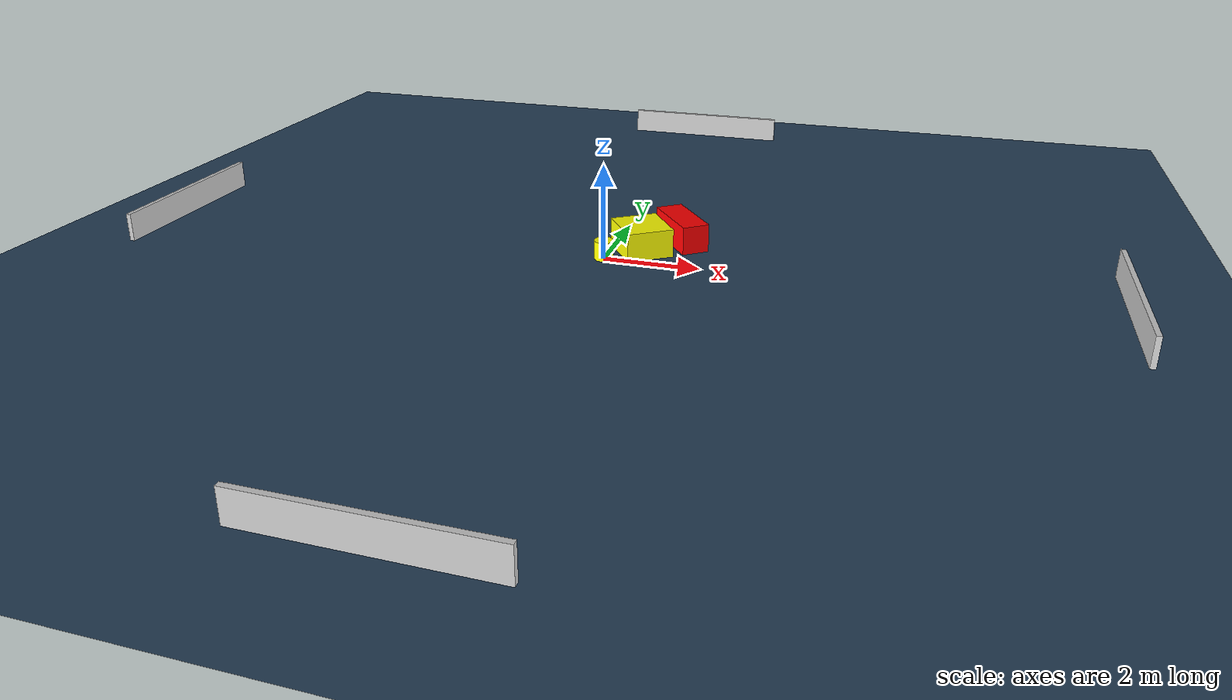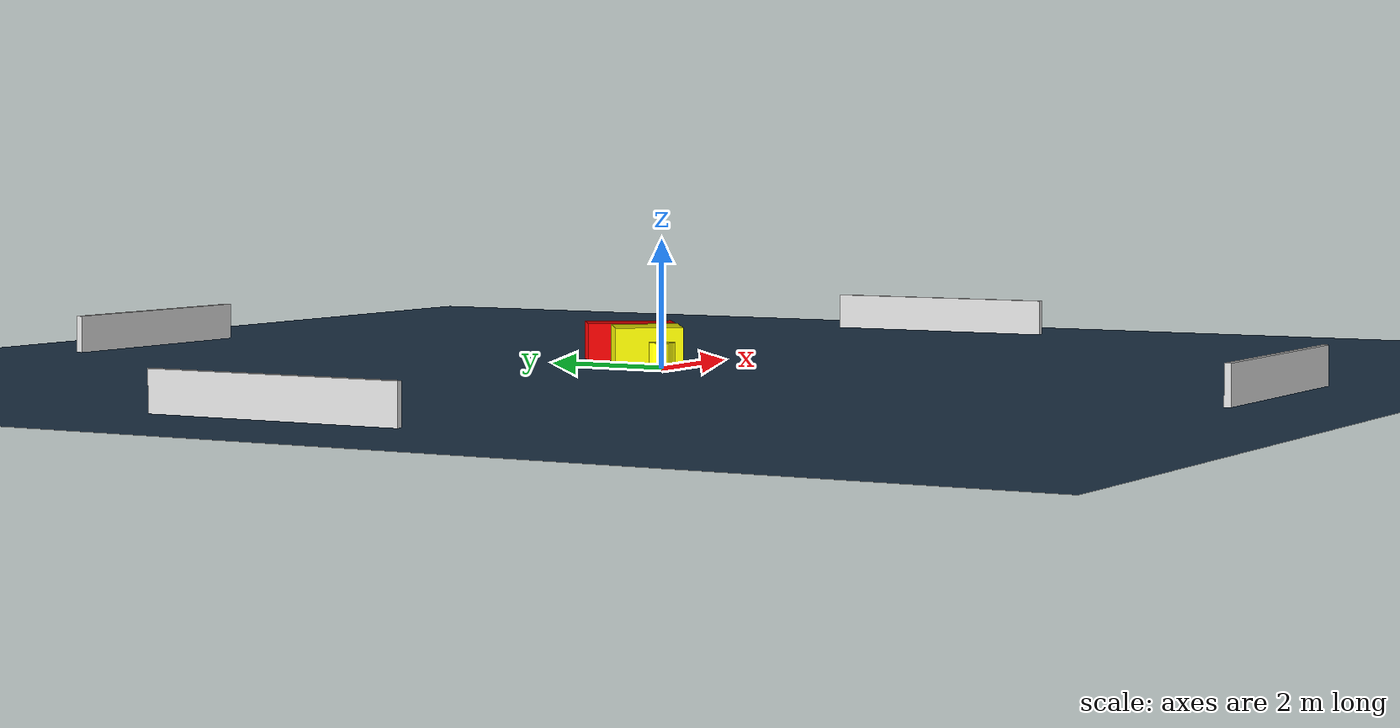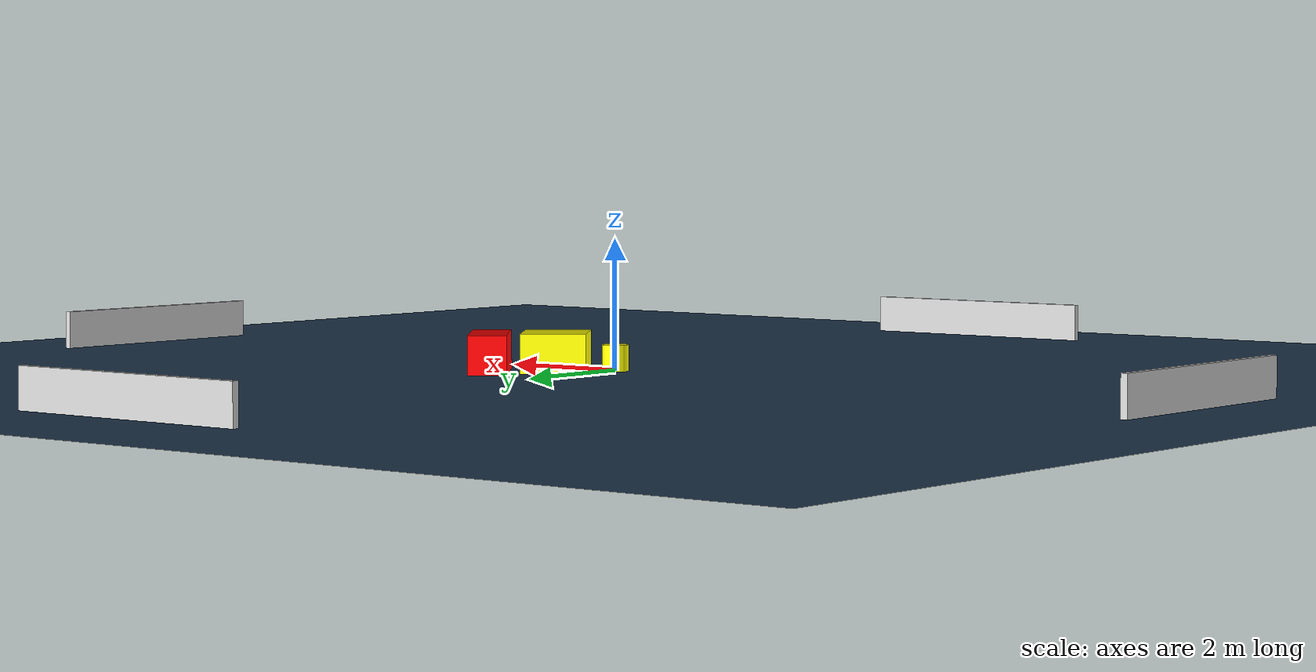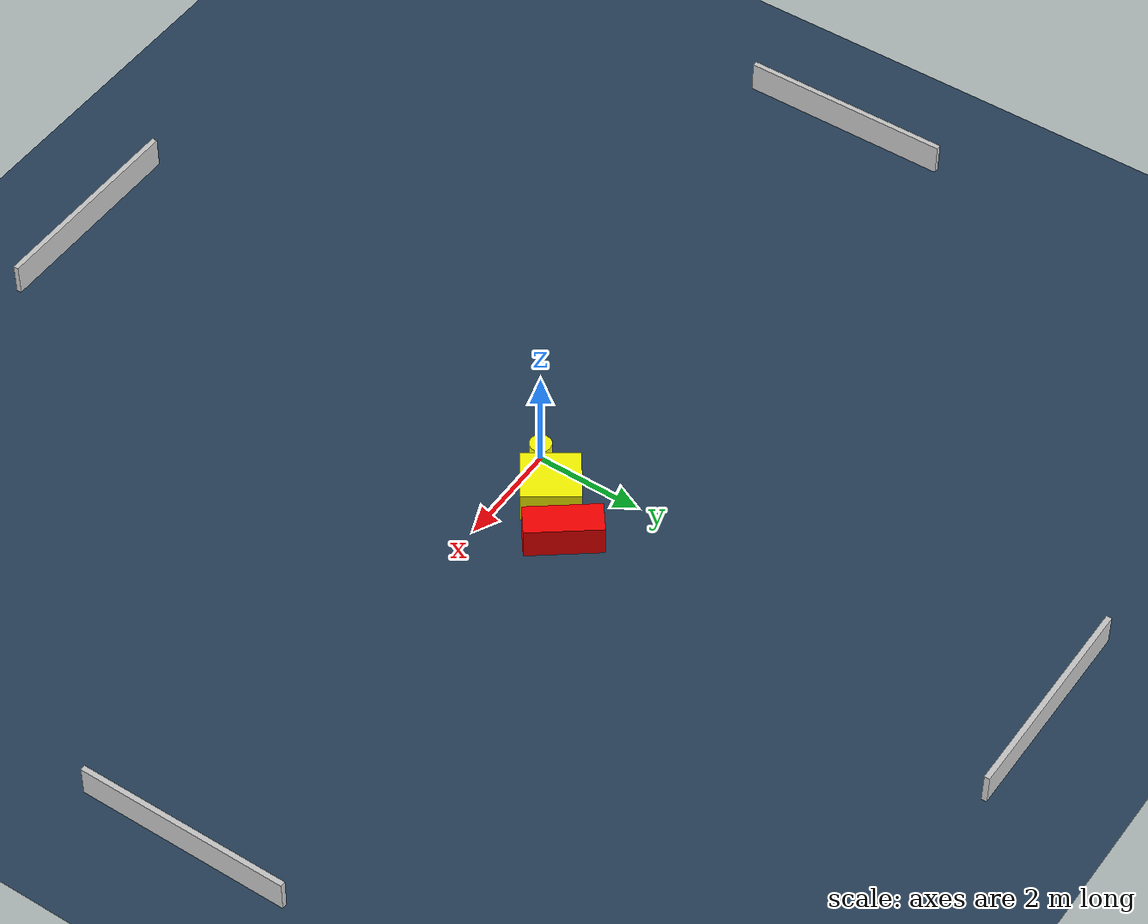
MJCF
<?xml version="1.0" ?>
<mujoco model="generated_environment">
  <option timestep="0.01" integrator="RK4" cone="elliptic"/>
  <default>
    <geom density="1"/>
  </default>
  <asset>
    <texture builtin="gradient" height="3072" name="skybox" rgb1="0.3 0.5 0.7" rgb2="0 0 0" type="skybox" width="512"/>
    <texture builtin="checker" height="300" name="groundplane" rgb1="0.2 0.3 0.4" rgb2="0.1 0.2 0.3" type="2d" width="300"/>
    <material name="groundplane" reflectance="0.2" texrepeat="5 5" texture="groundplane"/>
  </asset>
  <worldbody>
    <light dir="0 0 -1" directional="true" pos="0 0 1.5"/>
    <geom condim="3" friction="0.5 0.005 0.001" material="groundplane" name="floor" pos="0 0 0" size="0 0 0.05" type="plane"/>
    <body name="walls">
      <geom name="wall_1" condim="4" pos="-10.0 0.0 0.3" rgba="0.800000011920929 0.800000011920929 0.800000011920929 1.0" size="0.05 2.0 0.3" type="box"/>
      <geom name="wall_2" condim="4" pos="10.0 0.0 0.3" rgba="0.800000011920929 0.800000011920929 0.800000011920929 1.0" size="0.05 2.0 0.3" type="box"/>
      <geom name="wall_3" condim="4" pos="0.0 -10.0 0.3" rgba="0.800000011920929 0.800000011920929 0.800000011920929 1.0" size="2.0 0.05 0.3" type="box"/>
      <geom name="wall_4" condim="4" pos="0.0 10.0 0.3" rgba="0.800000011920929 0.800000011920929 0.800000011920929 1.0" size="2.0 0.05 0.3" type="box"/>
    </body>
    <body name="robot">
      <joint name="joint_x" type="slide" pos="0 0 0" axis="1 0 0"/>
      <joint name="joint_y" type="slide" pos="0 0 0" axis="0 1 0"/>
      <geom name="robot" type="cylinder" pos="0.0 0.0 0.2" size="0.2 0.2 0.0" mass="5.0" friction="1.0 0.005 0.0001" condim="4" rgba="1.0 1.0 0.0 1.0"/>
    </body>
    <body name="obstacle_1_movable">
      <geom name="obstacle_1_movable" condim="4" pos="0.6336494825768543 0.6431507904658328 0.3" euler="0 0 214.96044726867902" friction="0.0 0.005 0.001" rgba="1.0 1.0 0.0 1.0" size="0.49605234136052834 0.5320603645130049 0.3" type="box" mass="0.1"/>
      <joint type="free"/>
    </body>
    <body name="obstacle_2_static">
      <geom name="obstacle_2_static" condim="4" pos="1.3229606714576667 1.3711090795408707 0.3" euler="0 0 127.55534837057445" friction="0.0 0.005 0.001" rgba="1.0 0.0 0.0 1.0" size="0.6971803014859111 0.2919591221253453 0.3" type="box"/>
    </body>
  </worldbody>
  <actuator>
    <motor name="actuator_x" joint="joint_x" gear="1" ctrlrange="-1 1"/>
    <motor name="actuator_y" joint="joint_y" gear="1" ctrlrange="-1 1"/>
  </actuator>
</mujoco>
